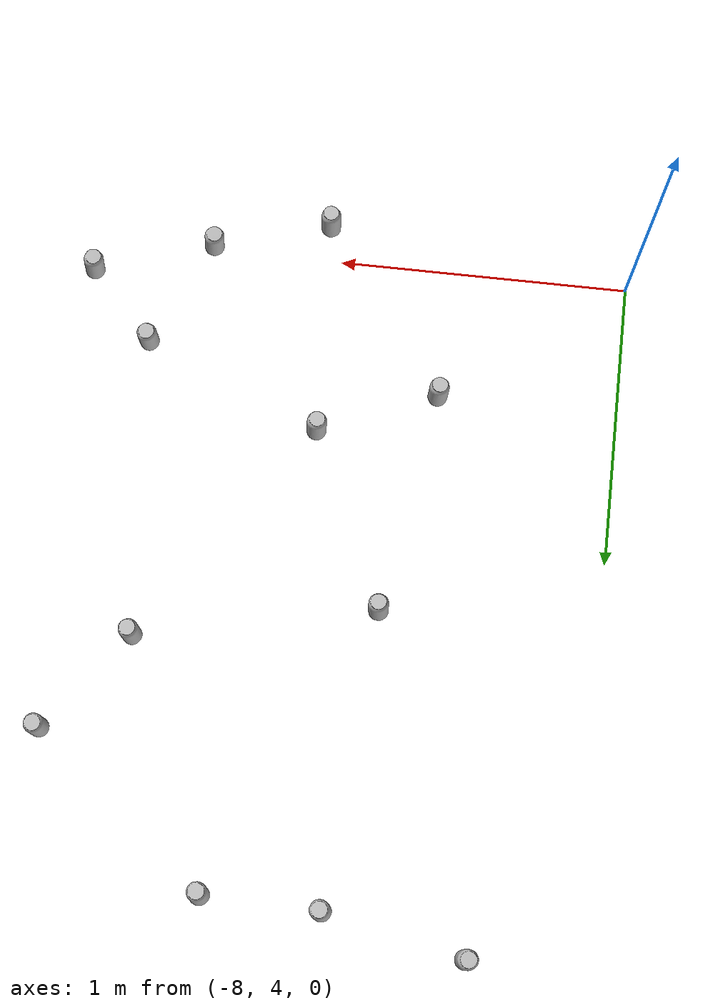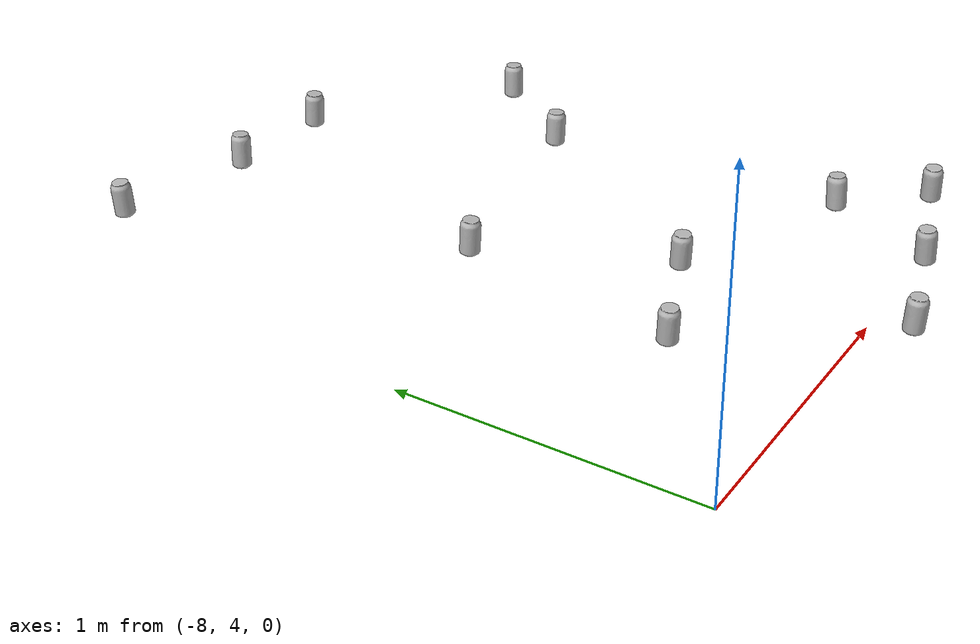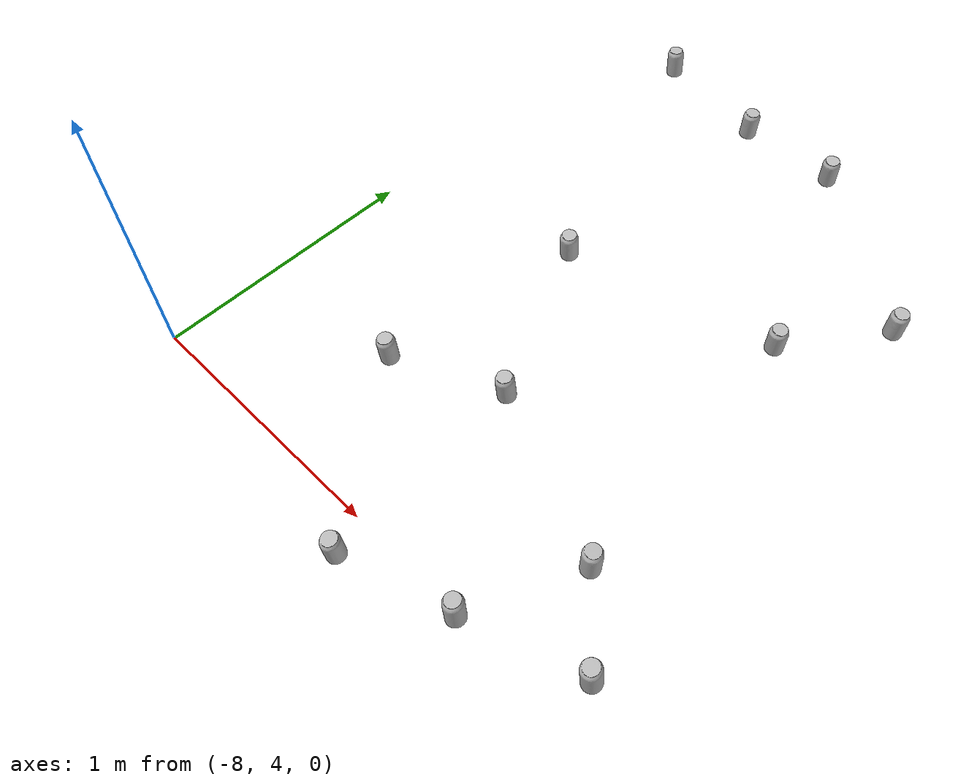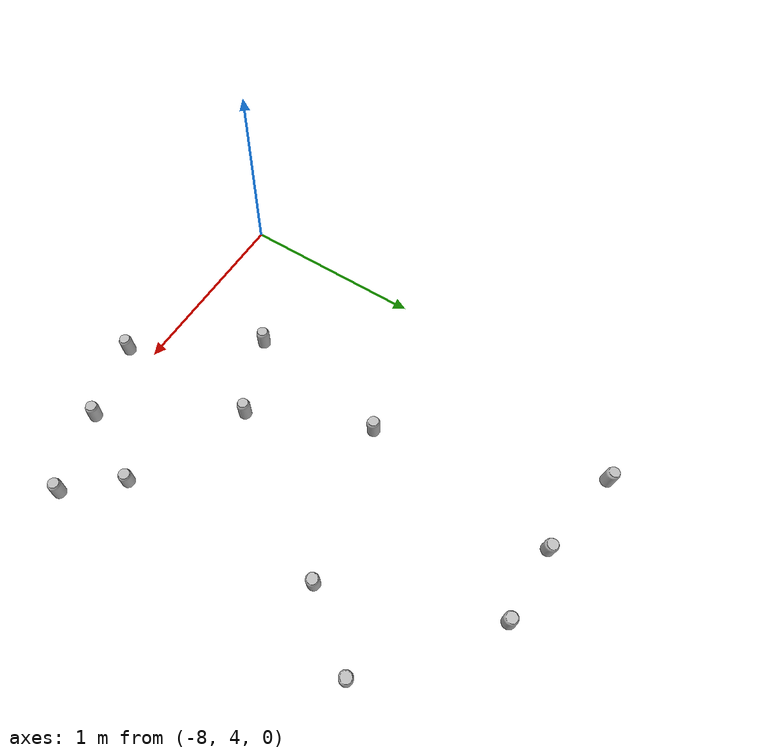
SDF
<sdf version="1.6">
 <world name="default">
  <model name="coke_can38">
   <link name="link">
    <inertial>
     <pose>0 0 0.06 0 -0 0</pose>
     <mass>0.39</mass>
     <inertia>
      <ixx>0.00055575</ixx>
      <ixy>0</ixy>
      <ixz>0</ixz>
      <iyy>0.00055575</iyy>
      <iyz>0</iyz>
      <izz>0.0001755</izz>
     </inertia>
    </inertial>
    <collision name="collision">
     <pose>0.003937 0.004724 -0.18 0 -0 0</pose>
     <geometry><mesh><uri>model://coke_can/meshes/coke_can.dae</uri></mesh></geometry>
     <surface>
      <friction><ode><mu>1</mu><mu2>1</mu2></ode></friction>
      <contact>
       <ode><kp>1e+07</kp><kd>1</kd><min_depth>0.001</min_depth><max_vel>0.1</max_vel></ode>
       <collide_bitmask>256</collide_bitmask>
      </contact>
     </surface>
    </collision>
    <visual name="visual">
     <pose>0.003937 0.004724 -0.18 0 -0 0</pose>
     <geometry><mesh><uri>model://coke_can/meshes/coke_can.dae</uri></mesh></geometry>
    </visual>
   </link>
   <pose>-6.98011 4.63353 -0.002659 -0.055092 0.007756 2.85881</pose>
  </model>
  <model name="coke_can197">
   <link name="link">
    <inertial>
     <pose>0 0 0.06 0 -0 0</pose>
     <mass>0.39</mass>
     <inertia>
      <ixx>0.00055575</ixx>
      <ixy>0</ixy>
      <ixz>0</ixz>
      <iyy>0.00055575</iyy>
      <iyz>0</iyz>
      <izz>0.0001755</izz>
     </inertia>
    </inertial>
    <collision name="collision">
     <pose>0.003937 0.004724 -0.18 0 -0 0</pose>
     <geometry><mesh><uri>model://coke_can/meshes/coke_can.dae</uri></mesh></geometry>
     <surface>
      <friction><ode><mu>1</mu><mu2>1</mu2></ode></friction>
      <contact>
       <ode><kp>1e+07</kp><kd>1</kd><min_depth>0.001</min_depth><max_vel>0.1</max_vel></ode>
       <collide_bitmask>256</collide_bitmask>
      </contact>
     </surface>
    </collision>
    <visual name="visual">
     <pose>0.003937 0.004724 -0.18 0 -0 0</pose>
     <geometry><mesh><uri>model://coke_can/meshes/coke_can.dae</uri></mesh></geometry>
    </visual>
   </link>
   <pose>-6.54672 3.99158 -0.002659 -0.055105 0.007746 1.43336</pose>
  </model>
  <model name="coke_can229">
   <link name="link">
    <inertial>
     <pose>0 0 0.06 0 -0 0</pose>
     <mass>0.39</mass>
     <inertia>
      <ixx>0.00055575</ixx>
      <ixy>0</ixy>
      <ixz>0</ixz>
      <iyy>0.00055575</iyy>
      <iyz>0</iyz>
      <izz>0.0001755</izz>
     </inertia>
    </inertial>
    <collision name="collision">
     <pose>0.003937 0.004724 -0.18 0 -0 0</pose>
     <geometry><mesh><uri>model://coke_can/meshes/coke_can.dae</uri></mesh></geometry>
     <surface>
      <friction><ode><mu>1</mu><mu2>1</mu2></ode></friction>
      <contact>
       <ode><kp>1e+07</kp><kd>1</kd><min_depth>0.001</min_depth><max_vel>0.1</max_vel></ode>
       <collide_bitmask>256</collide_bitmask>
      </contact>
     </surface>
    </collision>
    <visual name="visual">
     <pose>0.003937 0.004724 -0.18 0 -0 0</pose>
     <geometry><mesh><uri>model://coke_can/meshes/coke_can.dae</uri></mesh></geometry>
    </visual>
   </link>
   <pose>-6.18479 5.75403 -0.002659 -0.055113 0.007741 -0.987167</pose>
  </model>
  <model name="coke_can288">
   <link name="link">
    <inertial>
     <pose>0 0 0.06 0 -0 0</pose>
     <mass>0.39</mass>
     <inertia>
      <ixx>0.00055575</ixx>
      <ixy>0</ixy>
      <ixz>0</ixz>
      <iyy>0.00055575</iyy>
      <iyz>0</iyz>
      <izz>0.0001755</izz>
     </inertia>
    </inertial>
    <collision name="collision">
     <pose>0.003937 0.004724 -0.18 0 -0 0</pose>
     <geometry><mesh><uri>model://coke_can/meshes/coke_can.dae</uri></mesh></geometry>
     <surface>
      <friction><ode><mu>1</mu><mu2>1</mu2></ode></friction>
      <contact>
       <ode><kp>1e+07</kp><kd>1</kd><min_depth>0.001</min_depth><max_vel>0.1</max_vel></ode>
       <collide_bitmask>256</collide_bitmask>
      </contact>
     </surface>
    </collision>
    <visual name="visual">
     <pose>0.003937 0.004724 -0.18 0 -0 0</pose>
     <geometry><mesh><uri>model://coke_can/meshes/coke_can.dae</uri></mesh></geometry>
    </visual>
   </link>
   <pose>-7.25698 5.24209 -0.002659 -0.055123 0.007734 -2.54399</pose>
  </model>
  <model name="coke_can359">
   <link name="link">
    <inertial>
     <pose>0 0 0.06 0 -0 0</pose>
     <mass>0.39</mass>
     <inertia>
      <ixx>0.00055575</ixx>
      <ixy>0</ixy>
      <ixz>0</ixz>
      <iyy>0.00055575</iyy>
      <iyz>0</iyz>
      <izz>0.0001755</izz>
     </inertia>
    </inertial>
    <collision name="collision">
     <pose>0.003937 0.004724 -0.18 0 -0 0</pose>
     <geometry><mesh><uri>model://coke_can/meshes/coke_can.dae</uri></mesh></geometry>
     <surface>
      <friction><ode><mu>1</mu><mu2>1</mu2></ode></friction>
      <contact>
       <ode><kp>1e+07</kp><kd>1</kd><min_depth>0.001</min_depth><max_vel>0.1</max_vel></ode>
       <collide_bitmask>256</collide_bitmask>
      </contact>
     </surface>
    </collision>
    <visual name="visual">
     <pose>0.003937 0.004724 -0.18 0 -0 0</pose>
     <geometry><mesh><uri>model://coke_can/meshes/coke_can.dae</uri></mesh></geometry>
    </visual>
   </link>
   <pose>-6.14051 4.1246 -0.002659 -0.055122 0.007733 2.05771</pose>
  </model>
  <model name="coke_can392">
   <link name="link">
    <inertial>
     <pose>0 0 0.06 0 -0 0</pose>
     <mass>0.39</mass>
     <inertia>
      <ixx>0.00055575</ixx>
      <ixy>0</ixy>
      <ixz>0</ixz>
      <iyy>0.00055575</iyy>
      <iyz>0</iyz>
      <izz>0.0001755</izz>
     </inertia>
    </inertial>
    <collision name="collision">
     <pose>0.003937 0.004724 -0.18 0 -0 0</pose>
     <geometry><mesh><uri>model://coke_can/meshes/coke_can.dae</uri></mesh></geometry>
     <surface>
      <friction><ode><mu>1</mu><mu2>1</mu2></ode></friction>
      <contact>
       <ode><kp>1e+07</kp><kd>1</kd><min_depth>0.001</min_depth><max_vel>0.1</max_vel></ode>
       <collide_bitmask>256</collide_bitmask>
      </contact>
     </surface>
    </collision>
    <visual name="visual">
     <pose>0.003937 0.004724 -0.18 0 -0 0</pose>
     <geometry><mesh><uri>model://coke_can/meshes/coke_can.dae</uri></mesh></geometry>
    </visual>
   </link>
   <pose>-7.64745 6.35077 -0.002659 -0.055099 0.007752 1.25204</pose>
  </model>
  <model name="coke_can570">
   <link name="link">
    <inertial>
     <pose>0 0 0.06 0 -0 0</pose>
     <mass>0.39</mass>
     <inertia>
      <ixx>0.00055575</ixx>
      <ixy>0</ixy>
      <ixz>0</ixz>
      <iyy>0.00055575</iyy>
      <iyz>0</iyz>
      <izz>0.0001755</izz>
     </inertia>
    </inertial>
    <collision name="collision">
     <pose>0.003937 0.004724 -0.18 0 -0 0</pose>
     <geometry><mesh><uri>model://coke_can/meshes/coke_can.dae</uri></mesh></geometry>
     <surface>
      <friction><ode><mu>1</mu><mu2>1</mu2></ode></friction>
      <contact>
       <ode><kp>1e+07</kp><kd>1</kd><min_depth>0.001</min_depth><max_vel>0.1</max_vel></ode>
       <collide_bitmask>256</collide_bitmask>
      </contact>
     </surface>
    </collision>
    <visual name="visual">
     <pose>0.003937 0.004724 -0.18 0 -0 0</pose>
     <geometry><mesh><uri>model://coke_can/meshes/coke_can.dae</uri></mesh></geometry>
    </visual>
   </link>
   <pose>-7.17544 6.24818 -0.002659 -0.055131 0.007728 -1.23095</pose>
  </model>
  <model name="coke_can631">
   <link name="link">
    <inertial>
     <pose>0 0 0.06 0 -0 0</pose>
     <mass>0.39</mass>
     <inertia>
      <ixx>0.00055575</ixx>
      <ixy>0</ixy>
      <ixz>0</ixz>
      <iyy>0.00055575</iyy>
      <iyz>0</iyz>
      <izz>0.0001755</izz>
     </inertia>
    </inertial>
    <collision name="collision">
     <pose>0.003937 0.004724 -0.18 0 -0 0</pose>
     <geometry><mesh><uri>model://coke_can/meshes/coke_can.dae</uri></mesh></geometry>
     <surface>
      <friction><ode><mu>1</mu><mu2>1</mu2></ode></friction>
      <contact>
       <ode><kp>1e+07</kp><kd>1</kd><min_depth>0.001</min_depth><max_vel>0.1</max_vel></ode>
       <collide_bitmask>256</collide_bitmask>
      </contact>
     </surface>
    </collision>
    <visual name="visual">
     <pose>0.003937 0.004724 -0.18 0 -0 0</pose>
     <geometry><mesh><uri>model://coke_can/meshes/coke_can.dae</uri></mesh></geometry>
    </visual>
   </link>
   <pose>-6.77982 6.23966 -0.002659 -0.055106 0.007747 -2.3599</pose>
  </model>
  <model name="coke_can719">
   <link name="link">
    <inertial>
     <pose>0 0 0.06 0 -0 0</pose>
     <mass>0.39</mass>
     <inertia>
      <ixx>0.00055575</ixx>
      <ixy>0</ixy>
      <ixz>0</ixz>
      <iyy>0.00055575</iyy>
      <iyz>0</iyz>
      <izz>0.0001755</izz>
     </inertia>
    </inertial>
    <collision name="collision">
     <pose>0.003937 0.004724 -0.18 0 -0 0</pose>
     <geometry><mesh><uri>model://coke_can/meshes/coke_can.dae</uri></mesh></geometry>
     <surface>
      <friction><ode><mu>1</mu><mu2>1</mu2></ode></friction>
      <contact>
       <ode><kp>1e+07</kp><kd>1</kd><min_depth>0.001</min_depth><max_vel>0.1</max_vel></ode>
       <collide_bitmask>256</collide_bitmask>
      </contact>
     </surface>
    </collision>
    <visual name="visual">
     <pose>0.003937 0.004724 -0.18 0 -0 0</pose>
     <geometry><mesh><uri>model://coke_can/meshes/coke_can.dae</uri></mesh></geometry>
    </visual>
   </link>
   <pose>-6.94873 3.87671 -0.002659 -0.055133 0.007726 -2.96984</pose>
  </model>
  <model name="coke_can793">
   <link name="link">
    <inertial>
     <pose>0 0 0.06 0 -0 0</pose>
     <mass>0.39</mass>
     <inertia>
      <ixx>0.00055575</ixx>
      <ixy>0</ixy>
      <ixz>0</ixz>
      <iyy>0.00055575</iyy>
      <iyz>0</iyz>
      <izz>0.0001755</izz>
     </inertia>
    </inertial>
    <collision name="collision">
     <pose>0.003937 0.004724 -0.18 0 -0 0</pose>
     <geometry><mesh><uri>model://coke_can/meshes/coke_can.dae</uri></mesh></geometry>
     <surface>
      <friction><ode><mu>1</mu><mu2>1</mu2></ode></friction>
      <contact>
       <ode><kp>1e+07</kp><kd>1</kd><min_depth>0.001</min_depth><max_vel>0.1</max_vel></ode>
       <collide_bitmask>256</collide_bitmask>
      </contact>
     </surface>
    </collision>
    <visual name="visual">
     <pose>0.003937 0.004724 -0.18 0 -0 0</pose>
     <geometry><mesh><uri>model://coke_can/meshes/coke_can.dae</uri></mesh></geometry>
    </visual>
   </link>
   <pose>-6.36555 4.36883 -0.002659 -0.05511 0.007744 -0.046021</pose>
  </model>
  <model name="coke_can796">
   <link name="link">
    <inertial>
     <pose>0 0 0.06 0 -0 0</pose>
     <mass>0.39</mass>
     <inertia>
      <ixx>0.00055575</ixx>
      <ixy>0</ixy>
      <ixz>0</ixz>
      <iyy>0.00055575</iyy>
      <iyz>0</iyz>
      <izz>0.0001755</izz>
     </inertia>
    </inertial>
    <collision name="collision">
     <pose>0.003937 0.004724 -0.18 0 -0 0</pose>
     <geometry><mesh><uri>model://coke_can/meshes/coke_can.dae</uri></mesh></geometry>
     <surface>
      <friction><ode><mu>1</mu><mu2>1</mu2></ode></friction>
      <contact>
       <ode><kp>1e+07</kp><kd>1</kd><min_depth>0.001</min_depth><max_vel>0.1</max_vel></ode>
       <collide_bitmask>256</collide_bitmask>
      </contact>
     </surface>
    </collision>
    <visual name="visual">
     <pose>0.003937 0.004724 -0.18 0 -0 0</pose>
     <geometry><mesh><uri>model://coke_can/meshes/coke_can.dae</uri></mesh></geometry>
    </visual>
   </link>
   <pose>-6.44796 5.41242 -0.002659 -0.055106 0.007746 -1.68091</pose>
  </model>
  <model name="coke_can898">
   <link name="link">
    <inertial>
     <pose>0 0 0.06 0 -0 0</pose>
     <mass>0.39</mass>
     <inertia>
      <ixx>0.00055575</ixx>
      <ixy>0</ixy>
      <ixz>0</ixz>
      <iyy>0.00055575</iyy>
      <iyz>0</iyz>
      <izz>0.0001755</izz>
     </inertia>
    </inertial>
    <collision name="collision">
     <pose>0.003937 0.004724 -0.18 0 -0 0</pose>
     <geometry><mesh><uri>model://coke_can/meshes/coke_can.dae</uri></mesh></geometry>
     <surface>
      <friction><ode><mu>1</mu><mu2>1</mu2></ode></friction>
      <contact>
       <ode><kp>1e+07</kp><kd>1</kd><min_depth>0.001</min_depth><max_vel>0.1</max_vel></ode>
       <collide_bitmask>256</collide_bitmask>
      </contact>
     </surface>
    </collision>
    <visual name="visual">
     <pose>0.003937 0.004724 -0.18 0 -0 0</pose>
     <geometry><mesh><uri>model://coke_can/meshes/coke_can.dae</uri></mesh></geometry>
    </visual>
   </link>
   <pose>-7.38192 4.46633 -0.002659 -0.055087 0.007759 2.75893</pose>
  </model>
 </world>
</sdf>
